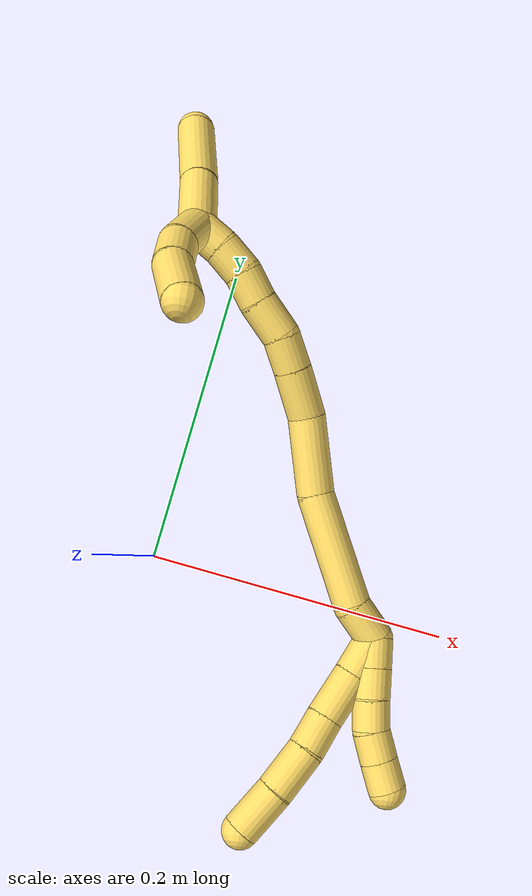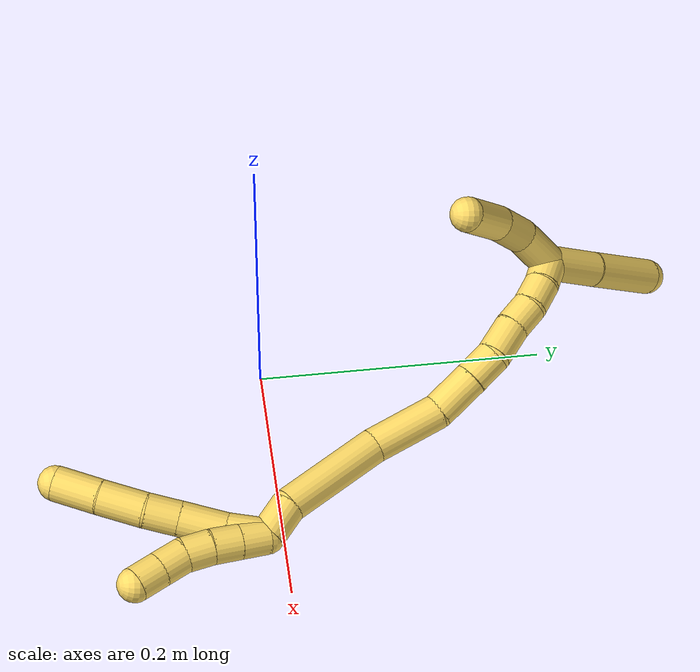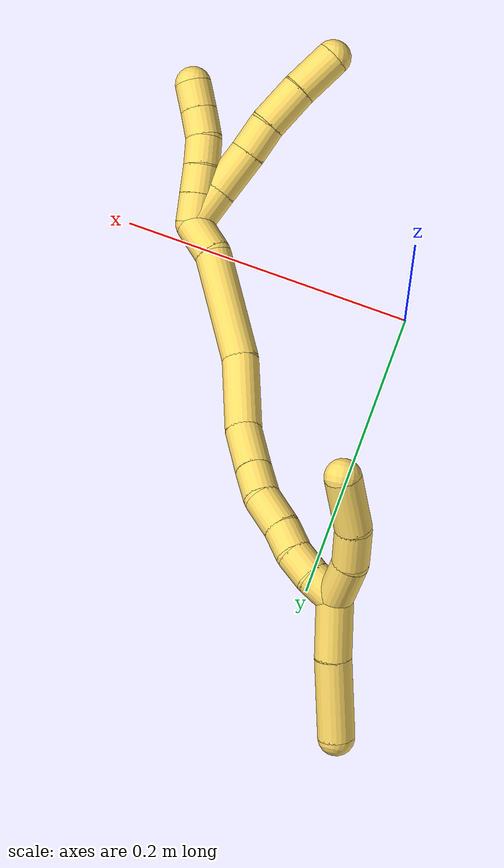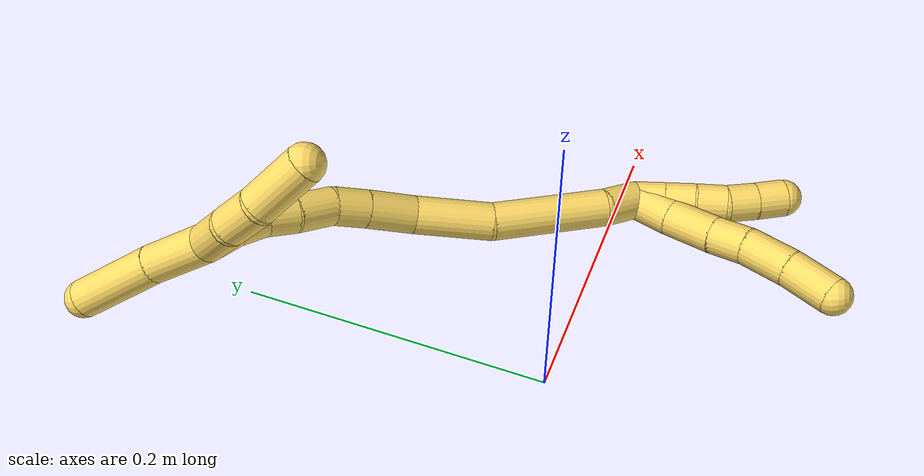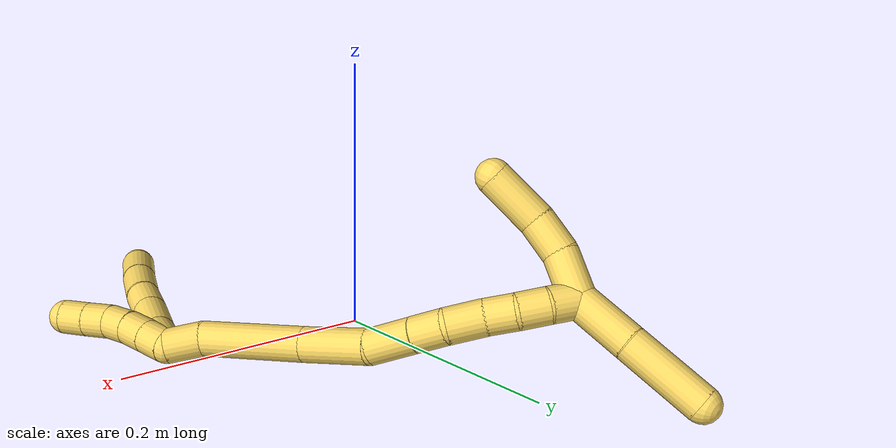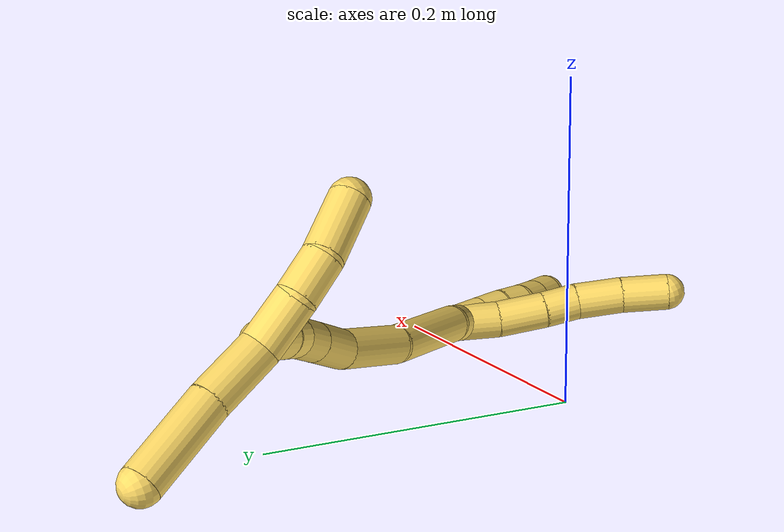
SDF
<sdf version="1.7">
 <world name="default">
  <model name="5">
   <static>0</static>
   <link name="5">
    <collision name="collision-cylinder-e_1_2_8">
     <pose>-0.006285 0.00115 0.012433 -0.092201 -0.466353 0.021912</pose>
     <geometry><cylinder><radius>0.0125</radius><length>0.027957</length></cylinder></geometry>
     <surface>
      <friction><ode><mu>1.16</mu><mu2>1.16</mu2><slip1>0</slip1><slip2>0</slip2></ode></friction>
      <contact><ode><kp>1e+06</kp><kd>1</kd><max_vel>0</max_vel><min_depth>0.001</min_depth></ode></contact>
     </surface>
    </collision>
    <visual name="visual-cylinder-e_1_2_8">
     <pose>-0.006285 0.00115 0.012433 -0.092201 -0.466353 0.021912</pose>
     <geometry><cylinder><radius>0.0125</radius><length>0.027957</length></cylinder></geometry>
     <material><ambient>1 0.858824 0.4 1</ambient></material>
    </visual>
    <collision name="collision-cylinder-e_2_8_9">
     <pose>-0.019168 0.00571 0.039813 -0.224348 -0.406374 0.046409</pose>
     <geometry><cylinder><radius>0.0125</radius><length>0.033384</length></cylinder></geometry>
     <surface>
      <friction><ode><mu>1.16</mu><mu2>1.16</mu2><slip1>0</slip1><slip2>0</slip2></ode></friction>
      <contact><ode><kp>1e+06</kp><kd>1</kd><max_vel>0</max_vel><min_depth>0.001</min_depth></ode></contact>
     </surface>
    </collision>
    <visual name="visual-cylinder-e_2_8_9">
     <pose>-0.019168 0.00571 0.039813 -0.224348 -0.406374 0.046409</pose>
     <geometry><cylinder><radius>0.0125</radius><length>0.033384</length></cylinder></geometry>
     <material><ambient>1 0.858824 0.4 1</ambient></material>
    </visual>
    <collision name="collision-cylinder-e_3_9_10">
     <pose>-0.029786 0.011625 0.065733 -0.224357 -0.343079 0.039027</pose>
     <geometry><cylinder><radius>0.0125</radius><length>0.023899</length></cylinder></geometry>
     <surface>
      <friction><ode><mu>1.16</mu><mu2>1.16</mu2><slip1>0</slip1><slip2>0</slip2></ode></friction>
      <contact><ode><kp>1e+06</kp><kd>1</kd><max_vel>0</max_vel><min_depth>0.001</min_depth></ode></contact>
     </surface>
    </collision>
    <visual name="visual-cylinder-e_3_9_10">
     <pose>-0.029786 0.011625 0.065733 -0.224357 -0.343079 0.039027</pose>
     <geometry><cylinder><radius>0.0125</radius><length>0.023899</length></cylinder></geometry>
     <material><ambient>1 0.858824 0.4 1</ambient></material>
    </visual>
    <collision name="collision-cylinder-e_4_10_11">
     <pose>-0.041407 0.017701 0.090509 -0.25322 -0.489752 0.063596</pose>
     <geometry><cylinder><radius>0.0125</radius><length>0.032318</length></cylinder></geometry>
     <surface>
      <friction><ode><mu>1.16</mu><mu2>1.16</mu2><slip1>0</slip1><slip2>0</slip2></ode></friction>
      <contact><ode><kp>1e+06</kp><kd>1</kd><max_vel>0</max_vel><min_depth>0.001</min_depth></ode></contact>
     </surface>
    </collision>
    <visual name="visual-cylinder-e_4_10_11">
     <pose>-0.041407 0.017701 0.090509 -0.25322 -0.489752 0.063596</pose>
     <geometry><cylinder><radius>0.0125</radius><length>0.032318</length></cylinder></geometry>
     <material><ambient>1 0.858824 0.4 1</ambient></material>
    </visual>
    <collision name="collision-cylinder-e_5_11_6">
     <pose>-0.057847 0.024793 0.117452 -0.261749 -0.576268 0.077984</pose>
     <geometry><cylinder><radius>0.0125</radius><length>0.032442</length></cylinder></geometry>
     <surface>
      <friction><ode><mu>1.16</mu><mu2>1.16</mu2><slip1>0</slip1><slip2>0</slip2></ode></friction>
      <contact><ode><kp>1e+06</kp><kd>1</kd><max_vel>0</max_vel><min_depth>0.001</min_depth></ode></contact>
     </surface>
    </collision>
    <visual name="visual-cylinder-e_5_11_6">
     <pose>-0.057847 0.024793 0.117452 -0.261749 -0.576268 0.077984</pose>
     <geometry><cylinder><radius>0.0125</radius><length>0.032442</length></cylinder></geometry>
     <material><ambient>1 0.858824 0.4 1</ambient></material>
    </visual>
    <collision name="collision-cylinder-e_1_2_12">
     <pose>-0.000232 -0.001491 0.009885 0.149699 -0.023211 -0.001741</pose>
     <geometry><cylinder><radius>0.0125</radius><length>0.02</length></cylinder></geometry>
     <surface>
      <friction><ode><mu>1.16</mu><mu2>1.16</mu2><slip1>0</slip1><slip2>0</slip2></ode></friction>
      <contact><ode><kp>1e+06</kp><kd>1</kd><max_vel>0</max_vel><min_depth>0.001</min_depth></ode></contact>
     </surface>
    </collision>
    <visual name="visual-cylinder-e_1_2_12">
     <pose>-0.000232 -0.001491 0.009885 0.149699 -0.023211 -0.001741</pose>
     <geometry><cylinder><radius>0.0125</radius><length>0.02</length></cylinder></geometry>
     <material><ambient>1 0.858824 0.4 1</ambient></material>
    </visual>
    <collision name="collision-cylinder-e_2_12_13">
     <pose>-0.000743 -0.004501 0.029651 0.152499 -0.027901 -0.002132</pose>
     <geometry><cylinder><radius>0.0125</radius><length>0.02</length></cylinder></geometry>
     <surface>
      <friction><ode><mu>1.16</mu><mu2>1.16</mu2><slip1>0</slip1><slip2>0</slip2></ode></friction>
      <contact><ode><kp>1e+06</kp><kd>1</kd><max_vel>0</max_vel><min_depth>0.001</min_depth></ode></contact>
     </surface>
    </collision>
    <visual name="visual-cylinder-e_2_12_13">
     <pose>-0.000743 -0.004501 0.029651 0.152499 -0.027901 -0.002132</pose>
     <geometry><cylinder><radius>0.0125</radius><length>0.02</length></cylinder></geometry>
     <material><ambient>1 0.858824 0.4 1</ambient></material>
    </visual>
    <collision name="collision-cylinder-e_3_13_14">
     <pose>-0.001331 -0.008553 0.0492 0.256277 -0.030886 -0.00398</pose>
     <geometry><cylinder><radius>0.0125</radius><length>0.02</length></cylinder></geometry>
     <surface>
      <friction><ode><mu>1.16</mu><mu2>1.16</mu2><slip1>0</slip1><slip2>0</slip2></ode></friction>
      <contact><ode><kp>1e+06</kp><kd>1</kd><max_vel>0</max_vel><min_depth>0.001</min_depth></ode></contact>
     </surface>
    </collision>
    <visual name="visual-cylinder-e_3_13_14">
     <pose>-0.001331 -0.008553 0.0492 0.256277 -0.030886 -0.00398</pose>
     <geometry><cylinder><radius>0.0125</radius><length>0.02</length></cylinder></geometry>
     <material><ambient>1 0.858824 0.4 1</ambient></material>
    </visual>
    <collision name="collision-cylinder-e_4_14_15">
     <pose>-0.000214 -0.015426 0.067765 0.453865 0.143029 0.03308</pose>
     <geometry><cylinder><radius>0.0125</radius><length>0.02</length></cylinder></geometry>
     <surface>
      <friction><ode><mu>1.16</mu><mu2>1.16</mu2><slip1>0</slip1><slip2>0</slip2></ode></friction>
      <contact><ode><kp>1e+06</kp><kd>1</kd><max_vel>0</max_vel><min_depth>0.001</min_depth></ode></contact>
     </surface>
    </collision>
    <visual name="visual-cylinder-e_4_14_15">
     <pose>-0.000214 -0.015426 0.067765 0.453865 0.143029 0.03308</pose>
     <geometry><cylinder><radius>0.0125</radius><length>0.02</length></cylinder></geometry>
     <material><ambient>1 0.858824 0.4 1</ambient></material>
    </visual>
    <collision name="collision-cylinder-e_5_15_5">
     <pose>0.003005 -0.024019 0.085531 0.447151 0.180388 0.041122</pose>
     <geometry><cylinder><radius>0.0125</radius><length>0.02</length></cylinder></geometry>
     <surface>
      <friction><ode><mu>1.16</mu><mu2>1.16</mu2><slip1>0</slip1><slip2>0</slip2></ode></friction>
      <contact><ode><kp>1e+06</kp><kd>1</kd><max_vel>0</max_vel><min_depth>0.001</min_depth></ode></contact>
     </surface>
    </collision>
    <visual name="visual-cylinder-e_5_15_5">
     <pose>0.003005 -0.024019 0.085531 0.447151 0.180388 0.041122</pose>
     <geometry><cylinder><radius>0.0125</radius><length>0.02</length></cylinder></geometry>
     <material><ambient>1 0.858824 0.4 1</ambient></material>
    </visual>
    <collision name="collision-cylinder-e_1_2_16">
     <pose>-0.004089 0.009435 -0.008786 -2.3206 -0.307096 0.683316</pose>
     <geometry><cylinder><radius>0.0125</radius><length>0.027051</length></cylinder></geometry>
     <surface>
      <friction><ode><mu>1.16</mu><mu2>1.16</mu2><slip1>0</slip1><slip2>0</slip2></ode></friction>
      <contact><ode><kp>1e+06</kp><kd>1</kd><max_vel>0</max_vel><min_depth>0.001</min_depth></ode></contact>
     </surface>
    </collision>
    <visual name="visual-cylinder-e_1_2_16">
     <pose>-0.004089 0.009435 -0.008786 -2.3206 -0.307096 0.683316</pose>
     <geometry><cylinder><radius>0.0125</radius><length>0.027051</length></cylinder></geometry>
     <material><ambient>1 0.858824 0.4 1</ambient></material>
    </visual>
    <collision name="collision-cylinder-e_2_16_17">
     <pose>-0.015475 0.037276 -0.050688 -2.63432 -0.190287 0.705505</pose>
     <geometry><cylinder><radius>0.0125</radius><length>0.077165</length></cylinder></geometry>
     <surface>
      <friction><ode><mu>1.16</mu><mu2>1.16</mu2><slip1>0</slip1><slip2>0</slip2></ode></friction>
      <contact><ode><kp>1e+06</kp><kd>1</kd><max_vel>0</max_vel><min_depth>0.001</min_depth></ode></contact>
     </surface>
    </collision>
    <visual name="visual-cylinder-e_2_16_17">
     <pose>-0.015475 0.037276 -0.050688 -2.63432 -0.190287 0.705505</pose>
     <geometry><cylinder><radius>0.0125</radius><length>0.077165</length></cylinder></geometry>
     <material><ambient>1 0.858824 0.4 1</ambient></material>
    </visual>
    <collision name="collision-cylinder-e_3_17_18">
     <pose>-0.022055 0.067416 -0.107012 -2.67345 0.027599 -0.115626</pose>
     <geometry><cylinder><radius>0.0125</radius><length>0.052034</length></cylinder></geometry>
     <surface>
      <friction><ode><mu>1.16</mu><mu2>1.16</mu2><slip1>0</slip1><slip2>0</slip2></ode></friction>
      <contact><ode><kp>1e+06</kp><kd>1</kd><max_vel>0</max_vel><min_depth>0.001</min_depth></ode></contact>
     </surface>
    </collision>
    <visual name="visual-cylinder-e_3_17_18">
     <pose>-0.022055 0.067416 -0.107012 -2.67345 0.027599 -0.115626</pose>
     <geometry><cylinder><radius>0.0125</radius><length>0.052034</length></cylinder></geometry>
     <material><ambient>1 0.858824 0.4 1</ambient></material>
    </visual>
    <collision name="collision-cylinder-e_4_18_19">
     <pose>-0.021096 0.090509 -0.142342 -2.38866 0.014502 -0.03668</pose>
     <geometry><cylinder><radius>0.0125</radius><length>0.033226</length></cylinder></geometry>
     <surface>
      <friction><ode><mu>1.16</mu><mu2>1.16</mu2><slip1>0</slip1><slip2>0</slip2></ode></friction>
      <contact><ode><kp>1e+06</kp><kd>1</kd><max_vel>0</max_vel><min_depth>0.001</min_depth></ode></contact>
     </surface>
    </collision>
    <visual name="visual-cylinder-e_4_18_19">
     <pose>-0.021096 0.090509 -0.142342 -2.38866 0.014502 -0.03668</pose>
     <geometry><cylinder><radius>0.0125</radius><length>0.033226</length></cylinder></geometry>
     <material><ambient>1 0.858824 0.4 1</ambient></material>
    </visual>
    <collision name="collision-cylinder-e_5_19_20">
     <pose>-0.02108 0.109727 -0.162692 -2.37912 -0.019829 0.04946</pose>
     <geometry><cylinder><radius>0.0125</radius><length>0.022762</length></cylinder></geometry>
     <surface>
      <friction><ode><mu>1.16</mu><mu2>1.16</mu2><slip1>0</slip1><slip2>0</slip2></ode></friction>
      <contact><ode><kp>1e+06</kp><kd>1</kd><max_vel>0</max_vel><min_depth>0.001</min_depth></ode></contact>
     </surface>
    </collision>
    <visual name="visual-cylinder-e_5_19_20">
     <pose>-0.02108 0.109727 -0.162692 -2.37912 -0.019829 0.04946</pose>
     <geometry><cylinder><radius>0.0125</radius><length>0.022762</length></cylinder></geometry>
     <material><ambient>1 0.858824 0.4 1</ambient></material>
    </visual>
    <collision name="collision-cylinder-e_6_20_21">
     <pose>-0.025206 0.127008 -0.179154 -2.28909 -0.302152 0.646953</pose>
     <geometry><cylinder><radius>0.0125</radius><length>0.026213</length></cylinder></geometry>
     <surface>
      <friction><ode><mu>1.16</mu><mu2>1.16</mu2><slip1>0</slip1><slip2>0</slip2></ode></friction>
      <contact><ode><kp>1e+06</kp><kd>1</kd><max_vel>0</max_vel><min_depth>0.001</min_depth></ode></contact>
     </surface>
    </collision>
    <visual name="visual-cylinder-e_6_20_21">
     <pose>-0.025206 0.127008 -0.179154 -2.28909 -0.302152 0.646953</pose>
     <geometry><cylinder><radius>0.0125</radius><length>0.026213</length></cylinder></geometry>
     <material><ambient>1 0.858824 0.4 1</ambient></material>
    </visual>
    <collision name="collision-cylinder-e_7_21_22">
     <pose>-0.03128 0.143303 -0.194758 -2.39091 -0.212425 0.528505</pose>
     <geometry><cylinder><radius>0.0125</radius><length>0.020619</length></cylinder></geometry>
     <surface>
      <friction><ode><mu>1.16</mu><mu2>1.16</mu2><slip1>0</slip1><slip2>0</slip2></ode></friction>
      <contact><ode><kp>1e+06</kp><kd>1</kd><max_vel>0</max_vel><min_depth>0.001</min_depth></ode></contact>
     </surface>
    </collision>
    <visual name="visual-cylinder-e_7_21_22">
     <pose>-0.03128 0.143303 -0.194758 -2.39091 -0.212425 0.528505</pose>
     <geometry><cylinder><radius>0.0125</radius><length>0.020619</length></cylinder></geometry>
     <material><ambient>1 0.858824 0.4 1</ambient></material>
    </visual>
    <collision name="collision-cylinder-e_8_22_23">
     <pose>-0.037572 0.157348 -0.208193 -2.27299 -0.413319 0.849025</pose>
     <geometry><cylinder><radius>0.0125</radius><length>0.02051</length></cylinder></geometry>
     <surface>
      <friction><ode><mu>1.16</mu><mu2>1.16</mu2><slip1>0</slip1><slip2>0</slip2></ode></friction>
      <contact><ode><kp>1e+06</kp><kd>1</kd><max_vel>0</max_vel><min_depth>0.001</min_depth></ode></contact>
     </surface>
    </collision>
    <visual name="visual-cylinder-e_8_22_23">
     <pose>-0.037572 0.157348 -0.208193 -2.27299 -0.413319 0.849025</pose>
     <geometry><cylinder><radius>0.0125</radius><length>0.02051</length></cylinder></geometry>
     <material><ambient>1 0.858824 0.4 1</ambient></material>
    </visual>
    <collision name="collision-cylinder-e_9_23_1">
     <pose>-0.047278 0.171431 -0.219282 -2.19913 -0.578979 1.05802</pose>
     <geometry><cylinder><radius>0.0125</radius><length>0.020419</length></cylinder></geometry>
     <surface>
      <friction><ode><mu>1.16</mu><mu2>1.16</mu2><slip1>0</slip1><slip2>0</slip2></ode></friction>
      <contact><ode><kp>1e+06</kp><kd>1</kd><max_vel>0</max_vel><min_depth>0.001</min_depth></ode></contact>
     </surface>
    </collision>
    <visual name="visual-cylinder-e_9_23_1">
     <pose>-0.047278 0.171431 -0.219282 -2.19913 -0.578979 1.05802</pose>
     <geometry><cylinder><radius>0.0125</radius><length>0.020419</length></cylinder></geometry>
     <material><ambient>1 0.858824 0.4 1</ambient></material>
    </visual>
    <collision name="collision-cylinder-e_1_1_24">
     <pose>-0.049429 0.188405 -0.211677 -0.672688 0.209635 -0.073531</pose>
     <geometry><cylinder><radius>0.0125</radius><length>0.033015</length></cylinder></geometry>
     <surface>
      <friction><ode><mu>1.16</mu><mu2>1.16</mu2><slip1>0</slip1><slip2>0</slip2></ode></friction>
      <contact><ode><kp>1e+06</kp><kd>1</kd><max_vel>0</max_vel><min_depth>0.001</min_depth></ode></contact>
     </surface>
    </collision>
    <visual name="visual-cylinder-e_1_1_24">
     <pose>-0.049429 0.188405 -0.211677 -0.672688 0.209635 -0.073531</pose>
     <geometry><cylinder><radius>0.0125</radius><length>0.033015</length></cylinder></geometry>
     <material><ambient>1 0.858824 0.4 1</ambient></material>
    </visual>
    <collision name="collision-cylinder-e_2_24_25">
     <pose>-0.040984 0.203704 -0.187622 -0.429843 0.379245 -0.083744</pose>
     <geometry><cylinder><radius>0.0125</radius><length>0.027064</length></cylinder></geometry>
     <surface>
      <friction><ode><mu>1.16</mu><mu2>1.16</mu2><slip1>0</slip1><slip2>0</slip2></ode></friction>
      <contact><ode><kp>1e+06</kp><kd>1</kd><max_vel>0</max_vel><min_depth>0.001</min_depth></ode></contact>
     </surface>
    </collision>
    <visual name="visual-cylinder-e_2_24_25">
     <pose>-0.040984 0.203704 -0.187622 -0.429843 0.379245 -0.083744</pose>
     <geometry><cylinder><radius>0.0125</radius><length>0.027064</length></cylinder></geometry>
     <material><ambient>1 0.858824 0.4 1</ambient></material>
    </visual>
    <collision name="collision-cylinder-e_3_25_4">
     <pose>-0.025038 0.213273 -0.160068 -0.262329 0.579827 -0.078669</pose>
     <geometry><cylinder><radius>0.0125</radius><length>0.039922</length></cylinder></geometry>
     <surface>
      <friction><ode><mu>1.16</mu><mu2>1.16</mu2><slip1>0</slip1><slip2>0</slip2></ode></friction>
      <contact><ode><kp>1e+06</kp><kd>1</kd><max_vel>0</max_vel><min_depth>0.001</min_depth></ode></contact>
     </surface>
    </collision>
    <visual name="visual-cylinder-e_3_25_4">
     <pose>-0.025038 0.213273 -0.160068 -0.262329 0.579827 -0.078669</pose>
     <geometry><cylinder><radius>0.0125</radius><length>0.039922</length></cylinder></geometry>
     <material><ambient>1 0.858824 0.4 1</ambient></material>
    </visual>
    <collision name="collision-cylinder-e_1_1_26">
     <pose>-0.059019 0.175066 -0.244188 2.97816 -0.296396 -2.13811</pose>
     <geometry><cylinder><radius>0.0125</radius><length>0.042141</length></cylinder></geometry>
     <surface>
      <friction><ode><mu>1.16</mu><mu2>1.16</mu2><slip1>0</slip1><slip2>0</slip2></ode></friction>
      <contact><ode><kp>1e+06</kp><kd>1</kd><max_vel>0</max_vel><min_depth>0.001</min_depth></ode></contact>
     </surface>
    </collision>
    <visual name="visual-cylinder-e_1_1_26">
     <pose>-0.059019 0.175066 -0.244188 2.97816 -0.296396 -2.13811</pose>
     <geometry><cylinder><radius>0.0125</radius><length>0.042141</length></cylinder></geometry>
     <material><ambient>1 0.858824 0.4 1</ambient></material>
    </visual>
    <collision name="collision-cylinder-e_2_26_3">
     <pose>-0.075666 0.167448 -0.290679 2.97994 -0.371198 -2.32702</pose>
     <geometry><cylinder><radius>0.0125</radius><length>0.057859</length></cylinder></geometry>
     <surface>
      <friction><ode><mu>1.16</mu><mu2>1.16</mu2><slip1>0</slip1><slip2>0</slip2></ode></friction>
      <contact><ode><kp>1e+06</kp><kd>1</kd><max_vel>0</max_vel><min_depth>0.001</min_depth></ode></contact>
     </surface>
    </collision>
    <visual name="visual-cylinder-e_2_26_3">
     <pose>-0.075666 0.167448 -0.290679 2.97994 -0.371198 -2.32702</pose>
     <geometry><cylinder><radius>0.0125</radius><length>0.057859</length></cylinder></geometry>
     <material><ambient>1 0.858824 0.4 1</ambient></material>
    </visual>
    <collision name="collision-sphere-3">
     <pose>-0.08616 0.163109 -0.317287 0 -0 0</pose>
     <geometry><sphere><radius>0.0125</radius></sphere></geometry>
     <surface>
      <friction><ode><mu>1.16</mu><mu2>1.16</mu2><slip1>0</slip1><slip2>0</slip2></ode></friction>
      <contact><ode><kp>1e+06</kp><kd>1</kd><max_vel>0</max_vel><min_depth>0.001</min_depth></ode></contact>
     </surface>
    </collision>
    <visual name="visual-sphere-3">
     <pose>-0.08616 0.163109 -0.317287 0 -0 0</pose>
     <geometry><sphere><radius>0.0125</radius></sphere></geometry>
     <material><ambient>1 0.858824 0.4 1</ambient></material>
    </visual>
    <collision name="collision-sphere-26">
     <pose>-0.065173 0.171787 -0.264071 0 -0 0</pose>
     <geometry><sphere><radius>0.0125</radius></sphere></geometry>
     <surface>
      <friction><ode><mu>1.16</mu><mu2>1.16</mu2><slip1>0</slip1><slip2>0</slip2></ode></friction>
      <contact><ode><kp>1e+06</kp><kd>1</kd><max_vel>0</max_vel><min_depth>0.001</min_depth></ode></contact>
     </surface>
    </collision>
    <visual name="visual-sphere-26">
     <pose>-0.065173 0.171787 -0.264071 0 -0 0</pose>
     <geometry><sphere><radius>0.0125</radius></sphere></geometry>
     <material><ambient>1 0.858824 0.4 1</ambient></material>
    </visual>
    <collision name="collision-sphere-4">
     <pose>-0.014102 0.217603 -0.143941 0 -0 0</pose>
     <geometry><sphere><radius>0.0125</radius></sphere></geometry>
     <surface>
      <friction><ode><mu>1.16</mu><mu2>1.16</mu2><slip1>0</slip1><slip2>0</slip2></ode></friction>
      <contact><ode><kp>1e+06</kp><kd>1</kd><max_vel>0</max_vel><min_depth>0.001</min_depth></ode></contact>
     </surface>
    </collision>
    <visual name="visual-sphere-4">
     <pose>-0.014102 0.217603 -0.143941 0 -0 0</pose>
     <geometry><sphere><radius>0.0125</radius></sphere></geometry>
     <material><ambient>1 0.858824 0.4 1</ambient></material>
    </visual>
    <collision name="collision-sphere-25">
     <pose>-0.035974 0.208942 -0.176195 0 -0 0</pose>
     <geometry><sphere><radius>0.0125</radius></sphere></geometry>
     <surface>
      <friction><ode><mu>1.16</mu><mu2>1.16</mu2><slip1>0</slip1><slip2>0</slip2></ode></friction>
      <contact><ode><kp>1e+06</kp><kd>1</kd><max_vel>0</max_vel><min_depth>0.001</min_depth></ode></contact>
     </surface>
    </collision>
    <visual name="visual-sphere-25">
     <pose>-0.035974 0.208942 -0.176195 0 -0 0</pose>
     <geometry><sphere><radius>0.0125</radius></sphere></geometry>
     <material><ambient>1 0.858824 0.4 1</ambient></material>
    </visual>
    <collision name="collision-sphere-24">
     <pose>-0.045994 0.198465 -0.199048 0 -0 0</pose>
     <geometry><sphere><radius>0.0125</radius></sphere></geometry>
     <surface>
      <friction><ode><mu>1.16</mu><mu2>1.16</mu2><slip1>0</slip1><slip2>0</slip2></ode></friction>
      <contact><ode><kp>1e+06</kp><kd>1</kd><max_vel>0</max_vel><min_depth>0.001</min_depth></ode></contact>
     </surface>
    </collision>
    <visual name="visual-sphere-24">
     <pose>-0.045994 0.198465 -0.199048 0 -0 0</pose>
     <geometry><sphere><radius>0.0125</radius></sphere></geometry>
     <material><ambient>1 0.858824 0.4 1</ambient></material>
    </visual>
    <collision name="collision-sphere-1">
     <pose>-0.052864 0.178345 -0.224305 0 -0 0</pose>
     <geometry><sphere><radius>0.0125</radius></sphere></geometry>
     <surface>
      <friction><ode><mu>1.16</mu><mu2>1.16</mu2><slip1>0</slip1><slip2>0</slip2></ode></friction>
      <contact><ode><kp>1e+06</kp><kd>1</kd><max_vel>0</max_vel><min_depth>0.001</min_depth></ode></contact>
     </surface>
    </collision>
    <visual name="visual-sphere-1">
     <pose>-0.052864 0.178345 -0.224305 0 -0 0</pose>
     <geometry><sphere><radius>0.0125</radius></sphere></geometry>
     <material><ambient>1 0.858824 0.4 1</ambient></material>
    </visual>
    <collision name="collision-sphere-23">
     <pose>-0.041691 0.164517 -0.214259 0 -0 0</pose>
     <geometry><sphere><radius>0.0125</radius></sphere></geometry>
     <surface>
      <friction><ode><mu>1.16</mu><mu2>1.16</mu2><slip1>0</slip1><slip2>0</slip2></ode></friction>
      <contact><ode><kp>1e+06</kp><kd>1</kd><max_vel>0</max_vel><min_depth>0.001</min_depth></ode></contact>
     </surface>
    </collision>
    <visual name="visual-sphere-23">
     <pose>-0.041691 0.164517 -0.214259 0 -0 0</pose>
     <geometry><sphere><radius>0.0125</radius></sphere></geometry>
     <material><ambient>1 0.858824 0.4 1</ambient></material>
    </visual>
    <collision name="collision-sphere-22">
     <pose>-0.033453 0.150178 -0.202127 0 -0 0</pose>
     <geometry><sphere><radius>0.0125</radius></sphere></geometry>
     <surface>
      <friction><ode><mu>1.16</mu><mu2>1.16</mu2><slip1>0</slip1><slip2>0</slip2></ode></friction>
      <contact><ode><kp>1e+06</kp><kd>1</kd><max_vel>0</max_vel><min_depth>0.001</min_depth></ode></contact>
     </surface>
    </collision>
    <visual name="visual-sphere-22">
     <pose>-0.033453 0.150178 -0.202127 0 -0 0</pose>
     <geometry><sphere><radius>0.0125</radius></sphere></geometry>
     <material><ambient>1 0.858824 0.4 1</ambient></material>
    </visual>
    <collision name="collision-sphere-21">
     <pose>-0.029106 0.136429 -0.187389 0 -0 0</pose>
     <geometry><sphere><radius>0.0125</radius></sphere></geometry>
     <surface>
      <friction><ode><mu>1.16</mu><mu2>1.16</mu2><slip1>0</slip1><slip2>0</slip2></ode></friction>
      <contact><ode><kp>1e+06</kp><kd>1</kd><max_vel>0</max_vel><min_depth>0.001</min_depth></ode></contact>
     </surface>
    </collision>
    <visual name="visual-sphere-21">
     <pose>-0.029106 0.136429 -0.187389 0 -0 0</pose>
     <geometry><sphere><radius>0.0125</radius></sphere></geometry>
     <material><ambient>1 0.858824 0.4 1</ambient></material>
    </visual>
    <collision name="collision-sphere-6">
     <pose>-0.066686 0.028312 0.13059 0 -0 0</pose>
     <geometry><sphere><radius>0.0125</radius></sphere></geometry>
     <surface>
      <friction><ode><mu>1.16</mu><mu2>1.16</mu2><slip1>0</slip1><slip2>0</slip2></ode></friction>
      <contact><ode><kp>1e+06</kp><kd>1</kd><max_vel>0</max_vel><min_depth>0.001</min_depth></ode></contact>
     </surface>
    </collision>
    <visual name="visual-sphere-6">
     <pose>-0.066686 0.028312 0.13059 0 -0 0</pose>
     <geometry><sphere><radius>0.0125</radius></sphere></geometry>
     <material><ambient>1 0.858824 0.4 1</ambient></material>
    </visual>
    <collision name="collision-sphere-11">
     <pose>-0.049008 0.021273 0.104314 0 -0 0</pose>
     <geometry><sphere><radius>0.0125</radius></sphere></geometry>
     <surface>
      <friction><ode><mu>1.16</mu><mu2>1.16</mu2><slip1>0</slip1><slip2>0</slip2></ode></friction>
      <contact><ode><kp>1e+06</kp><kd>1</kd><max_vel>0</max_vel><min_depth>0.001</min_depth></ode></contact>
     </surface>
    </collision>
    <visual name="visual-sphere-11">
     <pose>-0.049008 0.021273 0.104314 0 -0 0</pose>
     <geometry><sphere><radius>0.0125</radius></sphere></geometry>
     <material><ambient>1 0.858824 0.4 1</ambient></material>
    </visual>
    <collision name="collision-sphere-10">
     <pose>-0.033806 0.014128 0.076704 0 -0 0</pose>
     <geometry><sphere><radius>0.0125</radius></sphere></geometry>
     <surface>
      <friction><ode><mu>1.16</mu><mu2>1.16</mu2><slip1>0</slip1><slip2>0</slip2></ode></friction>
      <contact><ode><kp>1e+06</kp><kd>1</kd><max_vel>0</max_vel><min_depth>0.001</min_depth></ode></contact>
     </surface>
    </collision>
    <visual name="visual-sphere-10">
     <pose>-0.033806 0.014128 0.076704 0 -0 0</pose>
     <geometry><sphere><radius>0.0125</radius></sphere></geometry>
     <material><ambient>1 0.858824 0.4 1</ambient></material>
    </visual>
    <collision name="collision-sphere-9">
     <pose>-0.025766 0.009121 0.054762 0 -0 0</pose>
     <geometry><sphere><radius>0.0125</radius></sphere></geometry>
     <surface>
      <friction><ode><mu>1.16</mu><mu2>1.16</mu2><slip1>0</slip1><slip2>0</slip2></ode></friction>
      <contact><ode><kp>1e+06</kp><kd>1</kd><max_vel>0</max_vel><min_depth>0.001</min_depth></ode></contact>
     </surface>
    </collision>
    <visual name="visual-sphere-9">
     <pose>-0.025766 0.009121 0.054762 0 -0 0</pose>
     <geometry><sphere><radius>0.0125</radius></sphere></geometry>
     <material><ambient>1 0.858824 0.4 1</ambient></material>
    </visual>
    <collision name="collision-sphere-2">
     <geometry><sphere><radius>0.0125</radius></sphere></geometry>
     <surface>
      <friction><ode><mu>1.16</mu><mu2>1.16</mu2><slip1>0</slip1><slip2>0</slip2></ode></friction>
      <contact><ode><kp>1e+06</kp><kd>1</kd><max_vel>0</max_vel><min_depth>0.001</min_depth></ode></contact>
     </surface>
    </collision>
    <visual name="visual-sphere-2">
     <geometry><sphere><radius>0.0125</radius></sphere></geometry>
     <material><ambient>1 0.858824 0.4 1</ambient></material>
    </visual>
    <collision name="collision-sphere-19">
     <pose>-0.020855 0.101868 -0.154463 0 -0 0</pose>
     <geometry><sphere><radius>0.0125</radius></sphere></geometry>
     <surface>
      <friction><ode><mu>1.16</mu><mu2>1.16</mu2><slip1>0</slip1><slip2>0</slip2></ode></friction>
      <contact><ode><kp>1e+06</kp><kd>1</kd><max_vel>0</max_vel><min_depth>0.001</min_depth></ode></contact>
     </surface>
    </collision>
    <visual name="visual-sphere-19">
     <pose>-0.020855 0.101868 -0.154463 0 -0 0</pose>
     <geometry><sphere><radius>0.0125</radius></sphere></geometry>
     <material><ambient>1 0.858824 0.4 1</ambient></material>
    </visual>
    <collision name="collision-sphere-8">
     <pose>-0.01257 0.002299 0.024865 0 -0 0</pose>
     <geometry><sphere><radius>0.0125</radius></sphere></geometry>
     <surface>
      <friction><ode><mu>1.16</mu><mu2>1.16</mu2><slip1>0</slip1><slip2>0</slip2></ode></friction>
      <contact><ode><kp>1e+06</kp><kd>1</kd><max_vel>0</max_vel><min_depth>0.001</min_depth></ode></contact>
     </surface>
    </collision>
    <visual name="visual-sphere-8">
     <pose>-0.01257 0.002299 0.024865 0 -0 0</pose>
     <geometry><sphere><radius>0.0125</radius></sphere></geometry>
     <material><ambient>1 0.858824 0.4 1</ambient></material>
    </visual>
    <collision name="collision-sphere-12">
     <pose>-0.000464 -0.002982 0.019771 0 -0 0</pose>
     <geometry><sphere><radius>0.0125</radius></sphere></geometry>
     <surface>
      <friction><ode><mu>1.16</mu><mu2>1.16</mu2><slip1>0</slip1><slip2>0</slip2></ode></friction>
      <contact><ode><kp>1e+06</kp><kd>1</kd><max_vel>0</max_vel><min_depth>0.001</min_depth></ode></contact>
     </surface>
    </collision>
    <visual name="visual-sphere-12">
     <pose>-0.000464 -0.002982 0.019771 0 -0 0</pose>
     <geometry><sphere><radius>0.0125</radius></sphere></geometry>
     <material><ambient>1 0.858824 0.4 1</ambient></material>
    </visual>
    <collision name="collision-sphere-13">
     <pose>-0.001022 -0.006019 0.039531 0 -0 0</pose>
     <geometry><sphere><radius>0.0125</radius></sphere></geometry>
     <surface>
      <friction><ode><mu>1.16</mu><mu2>1.16</mu2><slip1>0</slip1><slip2>0</slip2></ode></friction>
      <contact><ode><kp>1e+06</kp><kd>1</kd><max_vel>0</max_vel><min_depth>0.001</min_depth></ode></contact>
     </surface>
    </collision>
    <visual name="visual-sphere-13">
     <pose>-0.001022 -0.006019 0.039531 0 -0 0</pose>
     <geometry><sphere><radius>0.0125</radius></sphere></geometry>
     <material><ambient>1 0.858824 0.4 1</ambient></material>
    </visual>
    <collision name="collision-sphere-14">
     <pose>-0.00164 -0.011086 0.058869 0 -0 0</pose>
     <geometry><sphere><radius>0.0125</radius></sphere></geometry>
     <surface>
      <friction><ode><mu>1.16</mu><mu2>1.16</mu2><slip1>0</slip1><slip2>0</slip2></ode></friction>
      <contact><ode><kp>1e+06</kp><kd>1</kd><max_vel>0</max_vel><min_depth>0.001</min_depth></ode></contact>
     </surface>
    </collision>
    <visual name="visual-sphere-14">
     <pose>-0.00164 -0.011086 0.058869 0 -0 0</pose>
     <geometry><sphere><radius>0.0125</radius></sphere></geometry>
     <material><ambient>1 0.858824 0.4 1</ambient></material>
    </visual>
    <collision name="collision-sphere-15">
     <pose>0.001211 -0.019766 0.07666 0 -0 0</pose>
     <geometry><sphere><radius>0.0125</radius></sphere></geometry>
     <surface>
      <friction><ode><mu>1.16</mu><mu2>1.16</mu2><slip1>0</slip1><slip2>0</slip2></ode></friction>
      <contact><ode><kp>1e+06</kp><kd>1</kd><max_vel>0</max_vel><min_depth>0.001</min_depth></ode></contact>
     </surface>
    </collision>
    <visual name="visual-sphere-15">
     <pose>0.001211 -0.019766 0.07666 0 -0 0</pose>
     <geometry><sphere><radius>0.0125</radius></sphere></geometry>
     <material><ambient>1 0.858824 0.4 1</ambient></material>
    </visual>
    <collision name="collision-sphere-5">
     <pose>0.004799 -0.028273 0.094401 0 -0 0</pose>
     <geometry><sphere><radius>0.0125</radius></sphere></geometry>
     <surface>
      <friction><ode><mu>1.16</mu><mu2>1.16</mu2><slip1>0</slip1><slip2>0</slip2></ode></friction>
      <contact><ode><kp>1e+06</kp><kd>1</kd><max_vel>0</max_vel><min_depth>0.001</min_depth></ode></contact>
     </surface>
    </collision>
    <visual name="visual-sphere-5">
     <pose>0.004799 -0.028273 0.094401 0 -0 0</pose>
     <geometry><sphere><radius>0.0125</radius></sphere></geometry>
     <material><ambient>1 0.858824 0.4 1</ambient></material>
    </visual>
    <collision name="collision-sphere-16">
     <pose>-0.008177 0.018871 -0.017573 0 -0 0</pose>
     <geometry><sphere><radius>0.0125</radius></sphere></geometry>
     <surface>
      <friction><ode><mu>1.16</mu><mu2>1.16</mu2><slip1>0</slip1><slip2>0</slip2></ode></friction>
      <contact><ode><kp>1e+06</kp><kd>1</kd><max_vel>0</max_vel><min_depth>0.001</min_depth></ode></contact>
     </surface>
    </collision>
    <visual name="visual-sphere-16">
     <pose>-0.008177 0.018871 -0.017573 0 -0 0</pose>
     <geometry><sphere><radius>0.0125</radius></sphere></geometry>
     <material><ambient>1 0.858824 0.4 1</ambient></material>
    </visual>
    <collision name="collision-sphere-17">
     <pose>-0.022773 0.05568 -0.083804 0 -0 0</pose>
     <geometry><sphere><radius>0.0125</radius></sphere></geometry>
     <surface>
      <friction><ode><mu>1.16</mu><mu2>1.16</mu2><slip1>0</slip1><slip2>0</slip2></ode></friction>
      <contact><ode><kp>1e+06</kp><kd>1</kd><max_vel>0</max_vel><min_depth>0.001</min_depth></ode></contact>
     </surface>
    </collision>
    <visual name="visual-sphere-17">
     <pose>-0.022773 0.05568 -0.083804 0 -0 0</pose>
     <geometry><sphere><radius>0.0125</radius></sphere></geometry>
     <material><ambient>1 0.858824 0.4 1</ambient></material>
    </visual>
    <collision name="collision-sphere-18">
     <pose>-0.021337 0.079151 -0.130221 0 -0 0</pose>
     <geometry><sphere><radius>0.0125</radius></sphere></geometry>
     <surface>
      <friction><ode><mu>1.16</mu><mu2>1.16</mu2><slip1>0</slip1><slip2>0</slip2></ode></friction>
      <contact><ode><kp>1e+06</kp><kd>1</kd><max_vel>0</max_vel><min_depth>0.001</min_depth></ode></contact>
     </surface>
    </collision>
    <visual name="visual-sphere-18">
     <pose>-0.021337 0.079151 -0.130221 0 -0 0</pose>
     <geometry><sphere><radius>0.0125</radius></sphere></geometry>
     <material><ambient>1 0.858824 0.4 1</ambient></material>
    </visual>
    <collision name="collision-sphere-20">
     <pose>-0.021306 0.117587 -0.17092 0 -0 0</pose>
     <geometry><sphere><radius>0.0125</radius></sphere></geometry>
     <surface>
      <friction><ode><mu>1.16</mu><mu2>1.16</mu2><slip1>0</slip1><slip2>0</slip2></ode></friction>
      <contact><ode><kp>1e+06</kp><kd>1</kd><max_vel>0</max_vel><min_depth>0.001</min_depth></ode></contact>
     </surface>
    </collision>
    <visual name="visual-sphere-20">
     <pose>-0.021306 0.117587 -0.17092 0 -0 0</pose>
     <geometry><sphere><radius>0.0125</radius></sphere></geometry>
     <material><ambient>1 0.858824 0.4 1</ambient></material>
    </visual>
    <inertial>
     <pose>-0.029351 0.084355 -0.088468 0 -0 0</pose>
     <mass>0.75</mass>
     <inertia><ixx>8e-05</ixx><ixy>0</ixy><ixz>0</ixz><iyy>3.7e-05</iyy><iyz>0</iyz><izz>-1.9e-05</izz></inertia>
    </inertial>
   </link>
   <pose>0.157839 -0.01184 0.011488 1.27466 -0.594066 0.316628</pose>
  </model>
 </world>
</sdf>
